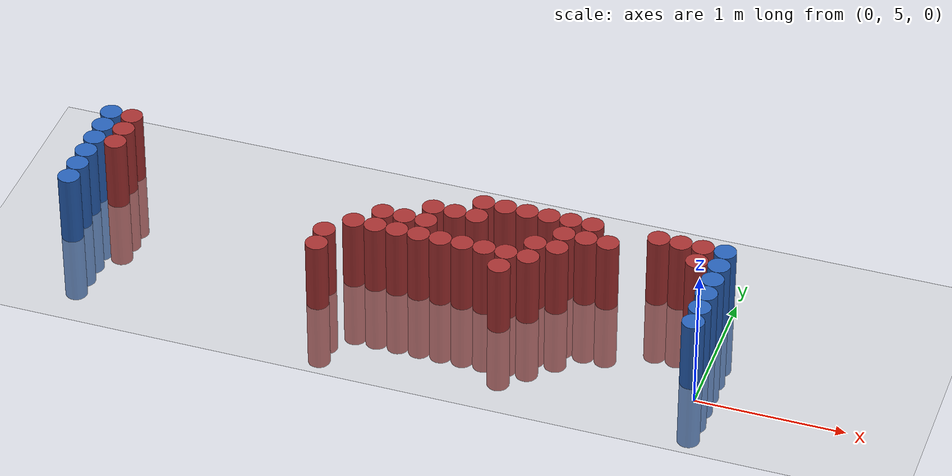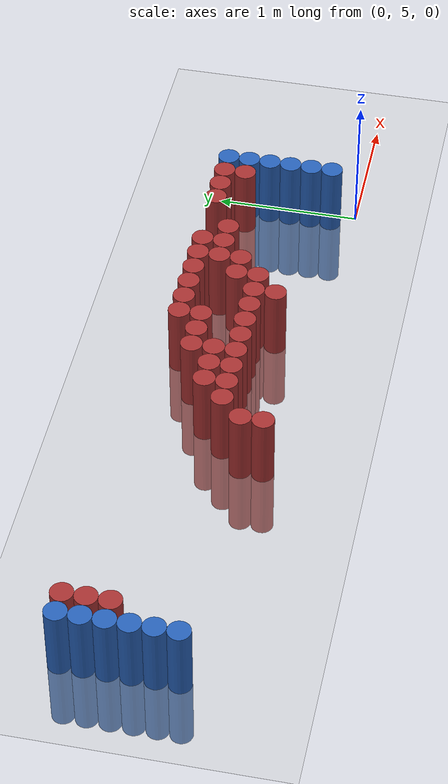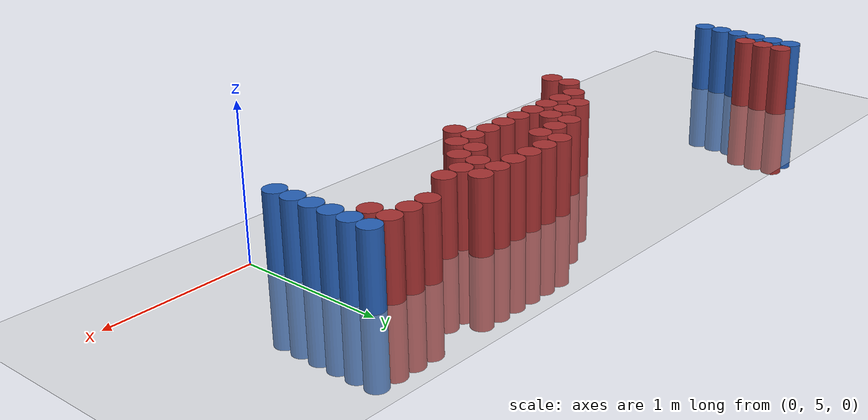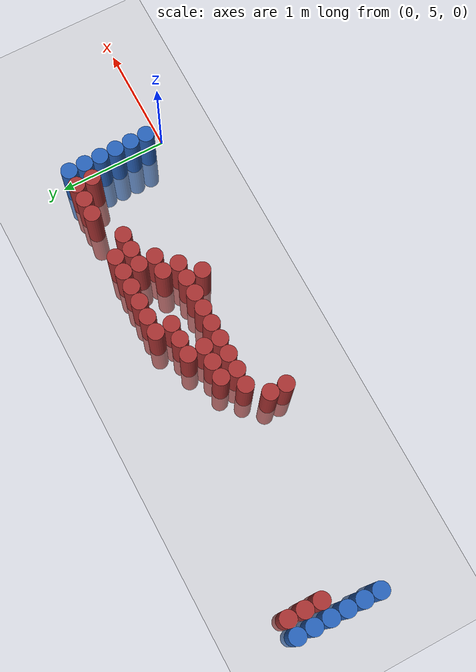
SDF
<sdf version="1.6">
 <world name="default">
  <model name="ground_plane">
   <static>1</static>
   <link name="link">
    <collision name="collision">
     <geometry><plane><normal>0 0 1</normal><size>100 100</size></plane></geometry>
     <surface><friction><ode><mu>100</mu><mu2>50</mu2></ode></friction></surface>
    </collision>
    <visual name="visual">
     <cast_shadows>0</cast_shadows>
     <geometry><plane><normal>0 0 1</normal><size>100 100</size></plane></geometry>
     <material>
      <script><uri>file://media/materials/scripts/gazebo.material</uri><name>Gazebo/Grey</name></script>
     </material>
    </visual>
   </link>
  </model>
  <model name="unit_cylinder_97">
   <static>1</static>
   <pose>-4.425000 5.325000 0.000000 0.000000 0.000000 0.000000</pose>
   <link name="link">
    <inertial>
     <mass>1</mass>
     <inertia><ixx>0.145833</ixx><ixy>0</ixy><ixz>0</ixz><iyy>0.145833</iyy><iyz>0</iyz><izz>0.125</izz></inertia>
    </inertial>
    <collision name="collision">
     <geometry><cylinder><radius>0.075000</radius><length>1</length></cylinder></geometry>
    </collision>
    <visual name="visual">
     <geometry><cylinder><radius>0.075000</radius><length>1</length></cylinder></geometry>
     <material>
      <ambient>0.152000 0.379000 0.720000 1</ambient>
      <diffuse>0.152000 0.379000 0.720000 1</diffuse>
     </material>
     <material>
      <script><name>Gazebo/Grey</name><uri>file://media/materials/scripts/gazebo.material</uri></script>
     </material>
    </visual>
   </link>
  </model>
  <model name="unit_cylinder_98">
   <static>1</static>
   <pose>-4.425000 5.475000 0.000000 0.000000 0.000000 0.000000</pose>
   <link name="link">
    <inertial>
     <mass>1</mass>
     <inertia><ixx>0.145833</ixx><ixy>0</ixy><ixz>0</ixz><iyy>0.145833</iyy><iyz>0</iyz><izz>0.125</izz></inertia>
    </inertial>
    <collision name="collision">
     <geometry><cylinder><radius>0.075000</radius><length>1</length></cylinder></geometry>
    </collision>
    <visual name="visual">
     <geometry><cylinder><radius>0.075000</radius><length>1</length></cylinder></geometry>
     <material>
      <ambient>0.152000 0.379000 0.720000 1</ambient>
      <diffuse>0.152000 0.379000 0.720000 1</diffuse>
     </material>
     <material>
      <script><name>Gazebo/Grey</name><uri>file://media/materials/scripts/gazebo.material</uri></script>
     </material>
    </visual>
   </link>
  </model>
  <model name="unit_cylinder_99">
   <static>1</static>
   <pose>-4.425000 5.625000 0.000000 0.000000 0.000000 0.000000</pose>
   <link name="link">
    <inertial>
     <mass>1</mass>
     <inertia><ixx>0.145833</ixx><ixy>0</ixy><ixz>0</ixz><iyy>0.145833</iyy><iyz>0</iyz><izz>0.125</izz></inertia>
    </inertial>
    <collision name="collision">
     <geometry><cylinder><radius>0.075000</radius><length>1</length></cylinder></geometry>
    </collision>
    <visual name="visual">
     <geometry><cylinder><radius>0.075000</radius><length>1</length></cylinder></geometry>
     <material>
      <ambient>0.152000 0.379000 0.720000 1</ambient>
      <diffuse>0.152000 0.379000 0.720000 1</diffuse>
     </material>
     <material>
      <script><name>Gazebo/Grey</name><uri>file://media/materials/scripts/gazebo.material</uri></script>
     </material>
    </visual>
   </link>
  </model>
  <model name="unit_cylinder_100">
   <static>1</static>
   <pose>-4.425000 5.775000 0.000000 0.000000 0.000000 0.000000</pose>
   <link name="link">
    <inertial>
     <mass>1</mass>
     <inertia><ixx>0.145833</ixx><ixy>0</ixy><ixz>0</ixz><iyy>0.145833</iyy><iyz>0</iyz><izz>0.125</izz></inertia>
    </inertial>
    <collision name="collision">
     <geometry><cylinder><radius>0.075000</radius><length>1</length></cylinder></geometry>
    </collision>
    <visual name="visual">
     <geometry><cylinder><radius>0.075000</radius><length>1</length></cylinder></geometry>
     <material>
      <ambient>0.152000 0.379000 0.720000 1</ambient>
      <diffuse>0.152000 0.379000 0.720000 1</diffuse>
     </material>
     <material>
      <script><name>Gazebo/Grey</name><uri>file://media/materials/scripts/gazebo.material</uri></script>
     </material>
    </visual>
   </link>
  </model>
  <model name="unit_cylinder_101">
   <static>1</static>
   <pose>-4.425000 5.925000 0.000000 0.000000 0.000000 0.000000</pose>
   <link name="link">
    <inertial>
     <mass>1</mass>
     <inertia><ixx>0.145833</ixx><ixy>0</ixy><ixz>0</ixz><iyy>0.145833</iyy><iyz>0</iyz><izz>0.125</izz></inertia>
    </inertial>
    <collision name="collision">
     <geometry><cylinder><radius>0.075000</radius><length>1</length></cylinder></geometry>
    </collision>
    <visual name="visual">
     <geometry><cylinder><radius>0.075000</radius><length>1</length></cylinder></geometry>
     <material>
      <ambient>0.152000 0.379000 0.720000 1</ambient>
      <diffuse>0.152000 0.379000 0.720000 1</diffuse>
     </material>
     <material>
      <script><name>Gazebo/Grey</name><uri>file://media/materials/scripts/gazebo.material</uri></script>
     </material>
    </visual>
   </link>
  </model>
  <model name="unit_cylinder_102">
   <static>1</static>
   <pose>-4.425000 6.075000 0.000000 0.000000 0.000000 0.000000</pose>
   <link name="link">
    <inertial>
     <mass>1</mass>
     <inertia><ixx>0.145833</ixx><ixy>0</ixy><ixz>0</ixz><iyy>0.145833</iyy><iyz>0</iyz><izz>0.125</izz></inertia>
    </inertial>
    <collision name="collision">
     <geometry><cylinder><radius>0.075000</radius><length>1</length></cylinder></geometry>
    </collision>
    <visual name="visual">
     <geometry><cylinder><radius>0.075000</radius><length>1</length></cylinder></geometry>
     <material>
      <ambient>0.152000 0.379000 0.720000 1</ambient>
      <diffuse>0.152000 0.379000 0.720000 1</diffuse>
     </material>
     <material>
      <script><name>Gazebo/Grey</name><uri>file://media/materials/scripts/gazebo.material</uri></script>
     </material>
    </visual>
   </link>
  </model>
  <model name="unit_cylinder_126">
   <static>1</static>
   <pose>-4.275000 5.775000 0.000000 0.000000 0.000000 0.000000</pose>
   <link name="link">
    <inertial>
     <mass>1</mass>
     <inertia><ixx>0.145833</ixx><ixy>0</ixy><ixz>0</ixz><iyy>0.145833</iyy><iyz>0</iyz><izz>0.125</izz></inertia>
    </inertial>
    <collision name="collision">
     <geometry><cylinder><radius>0.075000</radius><length>1</length></cylinder></geometry>
    </collision>
    <visual name="visual">
     <geometry><cylinder><radius>0.075000</radius><length>1</length></cylinder></geometry>
     <material>
      <ambient>0.648000 0.192000 0.192000 1</ambient>
      <diffuse>0.648000 0.192000 0.192000 1</diffuse>
     </material>
     <material>
      <script><name>Gazebo/Grey</name><uri>file://media/materials/scripts/gazebo.material</uri></script>
     </material>
    </visual>
   </link>
  </model>
  <model name="unit_cylinder_127">
   <static>1</static>
   <pose>-4.275000 5.925000 0.000000 0.000000 0.000000 0.000000</pose>
   <link name="link">
    <inertial>
     <mass>1</mass>
     <inertia><ixx>0.145833</ixx><ixy>0</ixy><ixz>0</ixz><iyy>0.145833</iyy><iyz>0</iyz><izz>0.125</izz></inertia>
    </inertial>
    <collision name="collision">
     <geometry><cylinder><radius>0.075000</radius><length>1</length></cylinder></geometry>
    </collision>
    <visual name="visual">
     <geometry><cylinder><radius>0.075000</radius><length>1</length></cylinder></geometry>
     <material>
      <ambient>0.648000 0.192000 0.192000 1</ambient>
      <diffuse>0.648000 0.192000 0.192000 1</diffuse>
     </material>
     <material>
      <script><name>Gazebo/Grey</name><uri>file://media/materials/scripts/gazebo.material</uri></script>
     </material>
    </visual>
   </link>
  </model>
  <model name="unit_cylinder_128">
   <static>1</static>
   <pose>-4.275000 6.075000 0.000000 0.000000 0.000000 0.000000</pose>
   <link name="link">
    <inertial>
     <mass>1</mass>
     <inertia><ixx>0.145833</ixx><ixy>0</ixy><ixz>0</ixz><iyy>0.145833</iyy><iyz>0</iyz><izz>0.125</izz></inertia>
    </inertial>
    <collision name="collision">
     <geometry><cylinder><radius>0.075000</radius><length>1</length></cylinder></geometry>
    </collision>
    <visual name="visual">
     <geometry><cylinder><radius>0.075000</radius><length>1</length></cylinder></geometry>
     <material>
      <ambient>0.648000 0.192000 0.192000 1</ambient>
      <diffuse>0.648000 0.192000 0.192000 1</diffuse>
     </material>
     <material>
      <script><name>Gazebo/Grey</name><uri>file://media/materials/scripts/gazebo.material</uri></script>
     </material>
    </visual>
   </link>
  </model>
  <model name="unit_cylinder_189">
   <static>1</static>
   <pose>-2.625000 5.175000 0.000000 0.000000 0.000000 0.000000</pose>
   <link name="link">
    <inertial>
     <mass>1</mass>
     <inertia><ixx>0.145833</ixx><ixy>0</ixy><ixz>0</ixz><iyy>0.145833</iyy><iyz>0</iyz><izz>0.125</izz></inertia>
    </inertial>
    <collision name="collision">
     <geometry><cylinder><radius>0.075000</radius><length>1</length></cylinder></geometry>
    </collision>
    <visual name="visual">
     <geometry><cylinder><radius>0.075000</radius><length>1</length></cylinder></geometry>
     <material>
      <ambient>0.648000 0.192000 0.192000 1</ambient>
      <diffuse>0.648000 0.192000 0.192000 1</diffuse>
     </material>
     <material>
      <script><name>Gazebo/Grey</name><uri>file://media/materials/scripts/gazebo.material</uri></script>
     </material>
    </visual>
   </link>
  </model>
  <model name="unit_cylinder_190">
   <static>1</static>
   <pose>-2.625000 5.325000 0.000000 0.000000 0.000000 0.000000</pose>
   <link name="link">
    <inertial>
     <mass>1</mass>
     <inertia><ixx>0.145833</ixx><ixy>0</ixy><ixz>0</ixz><iyy>0.145833</iyy><iyz>0</iyz><izz>0.125</izz></inertia>
    </inertial>
    <collision name="collision">
     <geometry><cylinder><radius>0.075000</radius><length>1</length></cylinder></geometry>
    </collision>
    <visual name="visual">
     <geometry><cylinder><radius>0.075000</radius><length>1</length></cylinder></geometry>
     <material>
      <ambient>0.648000 0.192000 0.192000 1</ambient>
      <diffuse>0.648000 0.192000 0.192000 1</diffuse>
     </material>
     <material>
      <script><name>Gazebo/Grey</name><uri>file://media/materials/scripts/gazebo.material</uri></script>
     </material>
    </visual>
   </link>
  </model>
  <model name="unit_cylinder_192">
   <static>1</static>
   <pose>-2.475000 5.475000 0.000000 0.000000 0.000000 0.000000</pose>
   <link name="link">
    <inertial>
     <mass>1</mass>
     <inertia><ixx>0.145833</ixx><ixy>0</ixy><ixz>0</ixz><iyy>0.145833</iyy><iyz>0</iyz><izz>0.125</izz></inertia>
    </inertial>
    <collision name="collision">
     <geometry><cylinder><radius>0.075000</radius><length>1</length></cylinder></geometry>
    </collision>
    <visual name="visual">
     <geometry><cylinder><radius>0.075000</radius><length>1</length></cylinder></geometry>
     <material>
      <ambient>0.648000 0.192000 0.192000 1</ambient>
      <diffuse>0.648000 0.192000 0.192000 1</diffuse>
     </material>
     <material>
      <script><name>Gazebo/Grey</name><uri>file://media/materials/scripts/gazebo.material</uri></script>
     </material>
    </visual>
   </link>
  </model>
  <model name="unit_cylinder_196">
   <static>1</static>
   <pose>-2.325000 5.475000 0.000000 0.000000 0.000000 0.000000</pose>
   <link name="link">
    <inertial>
     <mass>1</mass>
     <inertia><ixx>0.145833</ixx><ixy>0</ixy><ixz>0</ixz><iyy>0.145833</iyy><iyz>0</iyz><izz>0.125</izz></inertia>
    </inertial>
    <collision name="collision">
     <geometry><cylinder><radius>0.075000</radius><length>1</length></cylinder></geometry>
    </collision>
    <visual name="visual">
     <geometry><cylinder><radius>0.075000</radius><length>1</length></cylinder></geometry>
     <material>
      <ambient>0.648000 0.192000 0.192000 1</ambient>
      <diffuse>0.648000 0.192000 0.192000 1</diffuse>
     </material>
     <material>
      <script><name>Gazebo/Grey</name><uri>file://media/materials/scripts/gazebo.material</uri></script>
     </material>
    </visual>
   </link>
  </model>
  <model name="unit_cylinder_197">
   <static>1</static>
   <pose>-2.325000 5.625000 0.000000 0.000000 0.000000 0.000000</pose>
   <link name="link">
    <inertial>
     <mass>1</mass>
     <inertia><ixx>0.145833</ixx><ixy>0</ixy><ixz>0</ixz><iyy>0.145833</iyy><iyz>0</iyz><izz>0.125</izz></inertia>
    </inertial>
    <collision name="collision">
     <geometry><cylinder><radius>0.075000</radius><length>1</length></cylinder></geometry>
    </collision>
    <visual name="visual">
     <geometry><cylinder><radius>0.075000</radius><length>1</length></cylinder></geometry>
     <material>
      <ambient>0.648000 0.192000 0.192000 1</ambient>
      <diffuse>0.648000 0.192000 0.192000 1</diffuse>
     </material>
     <material>
      <script><name>Gazebo/Grey</name><uri>file://media/materials/scripts/gazebo.material</uri></script>
     </material>
    </visual>
   </link>
  </model>
  <model name="unit_cylinder_201">
   <static>1</static>
   <pose>-2.175000 5.475000 0.000000 0.000000 0.000000 0.000000</pose>
   <link name="link">
    <inertial>
     <mass>1</mass>
     <inertia><ixx>0.145833</ixx><ixy>0</ixy><ixz>0</ixz><iyy>0.145833</iyy><iyz>0</iyz><izz>0.125</izz></inertia>
    </inertial>
    <collision name="collision">
     <geometry><cylinder><radius>0.075000</radius><length>1</length></cylinder></geometry>
    </collision>
    <visual name="visual">
     <geometry><cylinder><radius>0.075000</radius><length>1</length></cylinder></geometry>
     <material>
      <ambient>0.648000 0.192000 0.192000 1</ambient>
      <diffuse>0.648000 0.192000 0.192000 1</diffuse>
     </material>
     <material>
      <script><name>Gazebo/Grey</name><uri>file://media/materials/scripts/gazebo.material</uri></script>
     </material>
    </visual>
   </link>
  </model>
  <model name="unit_cylinder_202">
   <static>1</static>
   <pose>-2.175000 5.625000 0.000000 0.000000 0.000000 0.000000</pose>
   <link name="link">
    <inertial>
     <mass>1</mass>
     <inertia><ixx>0.145833</ixx><ixy>0</ixy><ixz>0</ixz><iyy>0.145833</iyy><iyz>0</iyz><izz>0.125</izz></inertia>
    </inertial>
    <collision name="collision">
     <geometry><cylinder><radius>0.075000</radius><length>1</length></cylinder></geometry>
    </collision>
    <visual name="visual">
     <geometry><cylinder><radius>0.075000</radius><length>1</length></cylinder></geometry>
     <material>
      <ambient>0.648000 0.192000 0.192000 1</ambient>
      <diffuse>0.648000 0.192000 0.192000 1</diffuse>
     </material>
     <material>
      <script><name>Gazebo/Grey</name><uri>file://media/materials/scripts/gazebo.material</uri></script>
     </material>
    </visual>
   </link>
  </model>
  <model name="unit_cylinder_204">
   <static>1</static>
   <pose>-2.025000 5.475000 0.000000 0.000000 0.000000 0.000000</pose>
   <link name="link">
    <inertial>
     <mass>1</mass>
     <inertia><ixx>0.145833</ixx><ixy>0</ixy><ixz>0</ixz><iyy>0.145833</iyy><iyz>0</iyz><izz>0.125</izz></inertia>
    </inertial>
    <collision name="collision">
     <geometry><cylinder><radius>0.075000</radius><length>1</length></cylinder></geometry>
    </collision>
    <visual name="visual">
     <geometry><cylinder><radius>0.075000</radius><length>1</length></cylinder></geometry>
     <material>
      <ambient>0.648000 0.192000 0.192000 1</ambient>
      <diffuse>0.648000 0.192000 0.192000 1</diffuse>
     </material>
     <material>
      <script><name>Gazebo/Grey</name><uri>file://media/materials/scripts/gazebo.material</uri></script>
     </material>
    </visual>
   </link>
  </model>
  <model name="unit_cylinder_205">
   <static>1</static>
   <pose>-2.025000 5.625000 0.000000 0.000000 0.000000 0.000000</pose>
   <link name="link">
    <inertial>
     <mass>1</mass>
     <inertia><ixx>0.145833</ixx><ixy>0</ixy><ixz>0</ixz><iyy>0.145833</iyy><iyz>0</iyz><izz>0.125</izz></inertia>
    </inertial>
    <collision name="collision">
     <geometry><cylinder><radius>0.075000</radius><length>1</length></cylinder></geometry>
    </collision>
    <visual name="visual">
     <geometry><cylinder><radius>0.075000</radius><length>1</length></cylinder></geometry>
     <material>
      <ambient>0.648000 0.192000 0.192000 1</ambient>
      <diffuse>0.648000 0.192000 0.192000 1</diffuse>
     </material>
     <material>
      <script><name>Gazebo/Grey</name><uri>file://media/materials/scripts/gazebo.material</uri></script>
     </material>
    </visual>
   </link>
  </model>
  <model name="unit_cylinder_206">
   <static>1</static>
   <pose>-2.025000 5.775000 0.000000 0.000000 0.000000 0.000000</pose>
   <link name="link">
    <inertial>
     <mass>1</mass>
     <inertia><ixx>0.145833</ixx><ixy>0</ixy><ixz>0</ixz><iyy>0.145833</iyy><iyz>0</iyz><izz>0.125</izz></inertia>
    </inertial>
    <collision name="collision">
     <geometry><cylinder><radius>0.075000</radius><length>1</length></cylinder></geometry>
    </collision>
    <visual name="visual">
     <geometry><cylinder><radius>0.075000</radius><length>1</length></cylinder></geometry>
     <material>
      <ambient>0.648000 0.192000 0.192000 1</ambient>
      <diffuse>0.648000 0.192000 0.192000 1</diffuse>
     </material>
     <material>
      <script><name>Gazebo/Grey</name><uri>file://media/materials/scripts/gazebo.material</uri></script>
     </material>
    </visual>
   </link>
  </model>
  <model name="unit_cylinder_207">
   <static>1</static>
   <pose>-1.875000 5.475000 0.000000 0.000000 0.000000 0.000000</pose>
   <link name="link">
    <inertial>
     <mass>1</mass>
     <inertia><ixx>0.145833</ixx><ixy>0</ixy><ixz>0</ixz><iyy>0.145833</iyy><iyz>0</iyz><izz>0.125</izz></inertia>
    </inertial>
    <collision name="collision">
     <geometry><cylinder><radius>0.075000</radius><length>1</length></cylinder></geometry>
    </collision>
    <visual name="visual">
     <geometry><cylinder><radius>0.075000</radius><length>1</length></cylinder></geometry>
     <material>
      <ambient>0.648000 0.192000 0.192000 1</ambient>
      <diffuse>0.648000 0.192000 0.192000 1</diffuse>
     </material>
     <material>
      <script><name>Gazebo/Grey</name><uri>file://media/materials/scripts/gazebo.material</uri></script>
     </material>
    </visual>
   </link>
  </model>
  <model name="unit_cylinder_208">
   <static>1</static>
   <pose>-1.875000 5.775000 0.000000 0.000000 0.000000 0.000000</pose>
   <link name="link">
    <inertial>
     <mass>1</mass>
     <inertia><ixx>0.145833</ixx><ixy>0</ixy><ixz>0</ixz><iyy>0.145833</iyy><iyz>0</iyz><izz>0.125</izz></inertia>
    </inertial>
    <collision name="collision">
     <geometry><cylinder><radius>0.075000</radius><length>1</length></cylinder></geometry>
    </collision>
    <visual name="visual">
     <geometry><cylinder><radius>0.075000</radius><length>1</length></cylinder></geometry>
     <material>
      <ambient>0.648000 0.192000 0.192000 1</ambient>
      <diffuse>0.648000 0.192000 0.192000 1</diffuse>
     </material>
     <material>
      <script><name>Gazebo/Grey</name><uri>file://media/materials/scripts/gazebo.material</uri></script>
     </material>
    </visual>
   </link>
  </model>
  <model name="unit_cylinder_211">
   <static>1</static>
   <pose>-1.725000 5.475000 0.000000 0.000000 0.000000 0.000000</pose>
   <link name="link">
    <inertial>
     <mass>1</mass>
     <inertia><ixx>0.145833</ixx><ixy>0</ixy><ixz>0</ixz><iyy>0.145833</iyy><iyz>0</iyz><izz>0.125</izz></inertia>
    </inertial>
    <collision name="collision">
     <geometry><cylinder><radius>0.075000</radius><length>1</length></cylinder></geometry>
    </collision>
    <visual name="visual">
     <geometry><cylinder><radius>0.075000</radius><length>1</length></cylinder></geometry>
     <material>
      <ambient>0.648000 0.192000 0.192000 1</ambient>
      <diffuse>0.648000 0.192000 0.192000 1</diffuse>
     </material>
     <material>
      <script><name>Gazebo/Grey</name><uri>file://media/materials/scripts/gazebo.material</uri></script>
     </material>
    </visual>
   </link>
  </model>
  <model name="unit_cylinder_212">
   <static>1</static>
   <pose>-1.725000 5.775000 0.000000 0.000000 0.000000 0.000000</pose>
   <link name="link">
    <inertial>
     <mass>1</mass>
     <inertia><ixx>0.145833</ixx><ixy>0</ixy><ixz>0</ixz><iyy>0.145833</iyy><iyz>0</iyz><izz>0.125</izz></inertia>
    </inertial>
    <collision name="collision">
     <geometry><cylinder><radius>0.075000</radius><length>1</length></cylinder></geometry>
    </collision>
    <visual name="visual">
     <geometry><cylinder><radius>0.075000</radius><length>1</length></cylinder></geometry>
     <material>
      <ambient>0.648000 0.192000 0.192000 1</ambient>
      <diffuse>0.648000 0.192000 0.192000 1</diffuse>
     </material>
     <material>
      <script><name>Gazebo/Grey</name><uri>file://media/materials/scripts/gazebo.material</uri></script>
     </material>
    </visual>
   </link>
  </model>
  <model name="unit_cylinder_213">
   <static>1</static>
   <pose>-1.725000 5.925000 0.000000 0.000000 0.000000 0.000000</pose>
   <link name="link">
    <inertial>
     <mass>1</mass>
     <inertia><ixx>0.145833</ixx><ixy>0</ixy><ixz>0</ixz><iyy>0.145833</iyy><iyz>0</iyz><izz>0.125</izz></inertia>
    </inertial>
    <collision name="collision">
     <geometry><cylinder><radius>0.075000</radius><length>1</length></cylinder></geometry>
    </collision>
    <visual name="visual">
     <geometry><cylinder><radius>0.075000</radius><length>1</length></cylinder></geometry>
     <material>
      <ambient>0.648000 0.192000 0.192000 1</ambient>
      <diffuse>0.648000 0.192000 0.192000 1</diffuse>
     </material>
     <material>
      <script><name>Gazebo/Grey</name><uri>file://media/materials/scripts/gazebo.material</uri></script>
     </material>
    </visual>
   </link>
  </model>
  <model name="unit_cylinder_216">
   <static>1</static>
   <pose>-1.575000 5.475000 0.000000 0.000000 0.000000 0.000000</pose>
   <link name="link">
    <inertial>
     <mass>1</mass>
     <inertia><ixx>0.145833</ixx><ixy>0</ixy><ixz>0</ixz><iyy>0.145833</iyy><iyz>0</iyz><izz>0.125</izz></inertia>
    </inertial>
    <collision name="collision">
     <geometry><cylinder><radius>0.075000</radius><length>1</length></cylinder></geometry>
    </collision>
    <visual name="visual">
     <geometry><cylinder><radius>0.075000</radius><length>1</length></cylinder></geometry>
     <material>
      <ambient>0.648000 0.192000 0.192000 1</ambient>
      <diffuse>0.648000 0.192000 0.192000 1</diffuse>
     </material>
     <material>
      <script><name>Gazebo/Grey</name><uri>file://media/materials/scripts/gazebo.material</uri></script>
     </material>
    </visual>
   </link>
  </model>
  <model name="unit_cylinder_217">
   <static>1</static>
   <pose>-1.575000 5.925000 0.000000 0.000000 0.000000 0.000000</pose>
   <link name="link">
    <inertial>
     <mass>1</mass>
     <inertia><ixx>0.145833</ixx><ixy>0</ixy><ixz>0</ixz><iyy>0.145833</iyy><iyz>0</iyz><izz>0.125</izz></inertia>
    </inertial>
    <collision name="collision">
     <geometry><cylinder><radius>0.075000</radius><length>1</length></cylinder></geometry>
    </collision>
    <visual name="visual">
     <geometry><cylinder><radius>0.075000</radius><length>1</length></cylinder></geometry>
     <material>
      <ambient>0.648000 0.192000 0.192000 1</ambient>
      <diffuse>0.648000 0.192000 0.192000 1</diffuse>
     </material>
     <material>
      <script><name>Gazebo/Grey</name><uri>file://media/materials/scripts/gazebo.material</uri></script>
     </material>
    </visual>
   </link>
  </model>
  <model name="unit_cylinder_223">
   <static>1</static>
   <pose>-1.425000 5.325000 0.000000 0.000000 0.000000 0.000000</pose>
   <link name="link">
    <inertial>
     <mass>1</mass>
     <inertia><ixx>0.145833</ixx><ixy>0</ixy><ixz>0</ixz><iyy>0.145833</iyy><iyz>0</iyz><izz>0.125</izz></inertia>
    </inertial>
    <collision name="collision">
     <geometry><cylinder><radius>0.075000</radius><length>1</length></cylinder></geometry>
    </collision>
    <visual name="visual">
     <geometry><cylinder><radius>0.075000</radius><length>1</length></cylinder></geometry>
     <material>
      <ambient>0.648000 0.192000 0.192000 1</ambient>
      <diffuse>0.648000 0.192000 0.192000 1</diffuse>
     </material>
     <material>
      <script><name>Gazebo/Grey</name><uri>file://media/materials/scripts/gazebo.material</uri></script>
     </material>
    </visual>
   </link>
  </model>
  <model name="unit_cylinder_224">
   <static>1</static>
   <pose>-1.425000 5.475000 0.000000 0.000000 0.000000 0.000000</pose>
   <link name="link">
    <inertial>
     <mass>1</mass>
     <inertia><ixx>0.145833</ixx><ixy>0</ixy><ixz>0</ixz><iyy>0.145833</iyy><iyz>0</iyz><izz>0.125</izz></inertia>
    </inertial>
    <collision name="collision">
     <geometry><cylinder><radius>0.075000</radius><length>1</length></cylinder></geometry>
    </collision>
    <visual name="visual">
     <geometry><cylinder><radius>0.075000</radius><length>1</length></cylinder></geometry>
     <material>
      <ambient>0.648000 0.192000 0.192000 1</ambient>
      <diffuse>0.648000 0.192000 0.192000 1</diffuse>
     </material>
     <material>
      <script><name>Gazebo/Grey</name><uri>file://media/materials/scripts/gazebo.material</uri></script>
     </material>
    </visual>
   </link>
  </model>
  <model name="unit_cylinder_225">
   <static>1</static>
   <pose>-1.425000 5.925000 0.000000 0.000000 0.000000 0.000000</pose>
   <link name="link">
    <inertial>
     <mass>1</mass>
     <inertia><ixx>0.145833</ixx><ixy>0</ixy><ixz>0</ixz><iyy>0.145833</iyy><iyz>0</iyz><izz>0.125</izz></inertia>
    </inertial>
    <collision name="collision">
     <geometry><cylinder><radius>0.075000</radius><length>1</length></cylinder></geometry>
    </collision>
    <visual name="visual">
     <geometry><cylinder><radius>0.075000</radius><length>1</length></cylinder></geometry>
     <material>
      <ambient>0.648000 0.192000 0.192000 1</ambient>
      <diffuse>0.648000 0.192000 0.192000 1</diffuse>
     </material>
     <material>
      <script><name>Gazebo/Grey</name><uri>file://media/materials/scripts/gazebo.material</uri></script>
     </material>
    </visual>
   </link>
  </model>
  <model name="unit_cylinder_233">
   <static>1</static>
   <pose>-1.275000 5.475000 0.000000 0.000000 0.000000 0.000000</pose>
   <link name="link">
    <inertial>
     <mass>1</mass>
     <inertia><ixx>0.145833</ixx><ixy>0</ixy><ixz>0</ixz><iyy>0.145833</iyy><iyz>0</iyz><izz>0.125</izz></inertia>
    </inertial>
    <collision name="collision">
     <geometry><cylinder><radius>0.075000</radius><length>1</length></cylinder></geometry>
    </collision>
    <visual name="visual">
     <geometry><cylinder><radius>0.075000</radius><length>1</length></cylinder></geometry>
     <material>
      <ambient>0.648000 0.192000 0.192000 1</ambient>
      <diffuse>0.648000 0.192000 0.192000 1</diffuse>
     </material>
     <material>
      <script><name>Gazebo/Grey</name><uri>file://media/materials/scripts/gazebo.material</uri></script>
     </material>
    </visual>
   </link>
  </model>
  <model name="unit_cylinder_234">
   <static>1</static>
   <pose>-1.275000 5.625000 0.000000 0.000000 0.000000 0.000000</pose>
   <link name="link">
    <inertial>
     <mass>1</mass>
     <inertia><ixx>0.145833</ixx><ixy>0</ixy><ixz>0</ixz><iyy>0.145833</iyy><iyz>0</iyz><izz>0.125</izz></inertia>
    </inertial>
    <collision name="collision">
     <geometry><cylinder><radius>0.075000</radius><length>1</length></cylinder></geometry>
    </collision>
    <visual name="visual">
     <geometry><cylinder><radius>0.075000</radius><length>1</length></cylinder></geometry>
     <material>
      <ambient>0.648000 0.192000 0.192000 1</ambient>
      <diffuse>0.648000 0.192000 0.192000 1</diffuse>
     </material>
     <material>
      <script><name>Gazebo/Grey</name><uri>file://media/materials/scripts/gazebo.material</uri></script>
     </material>
    </visual>
   </link>
  </model>
  <model name="unit_cylinder_235">
   <static>1</static>
   <pose>-1.275000 5.925000 0.000000 0.000000 0.000000 0.000000</pose>
   <link name="link">
    <inertial>
     <mass>1</mass>
     <inertia><ixx>0.145833</ixx><ixy>0</ixy><ixz>0</ixz><iyy>0.145833</iyy><iyz>0</iyz><izz>0.125</izz></inertia>
    </inertial>
    <collision name="collision">
     <geometry><cylinder><radius>0.075000</radius><length>1</length></cylinder></geometry>
    </collision>
    <visual name="visual">
     <geometry><cylinder><radius>0.075000</radius><length>1</length></cylinder></geometry>
     <material>
      <ambient>0.648000 0.192000 0.192000 1</ambient>
      <diffuse>0.648000 0.192000 0.192000 1</diffuse>
     </material>
     <material>
      <script><name>Gazebo/Grey</name><uri>file://media/materials/scripts/gazebo.material</uri></script>
     </material>
    </visual>
   </link>
  </model>
  <model name="unit_cylinder_244">
   <static>1</static>
   <pose>-1.125000 5.625000 0.000000 0.000000 0.000000 0.000000</pose>
   <link name="link">
    <inertial>
     <mass>1</mass>
     <inertia><ixx>0.145833</ixx><ixy>0</ixy><ixz>0</ixz><iyy>0.145833</iyy><iyz>0</iyz><izz>0.125</izz></inertia>
    </inertial>
    <collision name="collision">
     <geometry><cylinder><radius>0.075000</radius><length>1</length></cylinder></geometry>
    </collision>
    <visual name="visual">
     <geometry><cylinder><radius>0.075000</radius><length>1</length></cylinder></geometry>
     <material>
      <ambient>0.648000 0.192000 0.192000 1</ambient>
      <diffuse>0.648000 0.192000 0.192000 1</diffuse>
     </material>
     <material>
      <script><name>Gazebo/Grey</name><uri>file://media/materials/scripts/gazebo.material</uri></script>
     </material>
    </visual>
   </link>
  </model>
  <model name="unit_cylinder_245">
   <static>1</static>
   <pose>-1.125000 5.775000 0.000000 0.000000 0.000000 0.000000</pose>
   <link name="link">
    <inertial>
     <mass>1</mass>
     <inertia><ixx>0.145833</ixx><ixy>0</ixy><ixz>0</ixz><iyy>0.145833</iyy><iyz>0</iyz><izz>0.125</izz></inertia>
    </inertial>
    <collision name="collision">
     <geometry><cylinder><radius>0.075000</radius><length>1</length></cylinder></geometry>
    </collision>
    <visual name="visual">
     <geometry><cylinder><radius>0.075000</radius><length>1</length></cylinder></geometry>
     <material>
      <ambient>0.648000 0.192000 0.192000 1</ambient>
      <diffuse>0.648000 0.192000 0.192000 1</diffuse>
     </material>
     <material>
      <script><name>Gazebo/Grey</name><uri>file://media/materials/scripts/gazebo.material</uri></script>
     </material>
    </visual>
   </link>
  </model>
  <model name="unit_cylinder_246">
   <static>1</static>
   <pose>-1.125000 5.925000 0.000000 0.000000 0.000000 0.000000</pose>
   <link name="link">
    <inertial>
     <mass>1</mass>
     <inertia><ixx>0.145833</ixx><ixy>0</ixy><ixz>0</ixz><iyy>0.145833</iyy><iyz>0</iyz><izz>0.125</izz></inertia>
    </inertial>
    <collision name="collision">
     <geometry><cylinder><radius>0.075000</radius><length>1</length></cylinder></geometry>
    </collision>
    <visual name="visual">
     <geometry><cylinder><radius>0.075000</radius><length>1</length></cylinder></geometry>
     <material>
      <ambient>0.648000 0.192000 0.192000 1</ambient>
      <diffuse>0.648000 0.192000 0.192000 1</diffuse>
     </material>
     <material>
      <script><name>Gazebo/Grey</name><uri>file://media/materials/scripts/gazebo.material</uri></script>
     </material>
    </visual>
   </link>
  </model>
  <model name="unit_cylinder_256">
   <static>1</static>
   <pose>-0.975000 5.775000 0.000000 0.000000 0.000000 0.000000</pose>
   <link name="link">
    <inertial>
     <mass>1</mass>
     <inertia><ixx>0.145833</ixx><ixy>0</ixy><ixz>0</ixz><iyy>0.145833</iyy><iyz>0</iyz><izz>0.125</izz></inertia>
    </inertial>
    <collision name="collision">
     <geometry><cylinder><radius>0.075000</radius><length>1</length></cylinder></geometry>
    </collision>
    <visual name="visual">
     <geometry><cylinder><radius>0.075000</radius><length>1</length></cylinder></geometry>
     <material>
      <ambient>0.648000 0.192000 0.192000 1</ambient>
      <diffuse>0.648000 0.192000 0.192000 1</diffuse>
     </material>
     <material>
      <script><name>Gazebo/Grey</name><uri>file://media/materials/scripts/gazebo.material</uri></script>
     </material>
    </visual>
   </link>
  </model>
  <model name="unit_cylinder_257">
   <static>1</static>
   <pose>-0.975000 5.925000 0.000000 0.000000 0.000000 0.000000</pose>
   <link name="link">
    <inertial>
     <mass>1</mass>
     <inertia><ixx>0.145833</ixx><ixy>0</ixy><ixz>0</ixz><iyy>0.145833</iyy><iyz>0</iyz><izz>0.125</izz></inertia>
    </inertial>
    <collision name="collision">
     <geometry><cylinder><radius>0.075000</radius><length>1</length></cylinder></geometry>
    </collision>
    <visual name="visual">
     <geometry><cylinder><radius>0.075000</radius><length>1</length></cylinder></geometry>
     <material>
      <ambient>0.648000 0.192000 0.192000 1</ambient>
      <diffuse>0.648000 0.192000 0.192000 1</diffuse>
     </material>
     <material>
      <script><name>Gazebo/Grey</name><uri>file://media/materials/scripts/gazebo.material</uri></script>
     </material>
    </visual>
   </link>
  </model>
  <model name="unit_cylinder_266">
   <static>1</static>
   <pose>-0.825000 5.775000 0.000000 0.000000 0.000000 0.000000</pose>
   <link name="link">
    <inertial>
     <mass>1</mass>
     <inertia><ixx>0.145833</ixx><ixy>0</ixy><ixz>0</ixz><iyy>0.145833</iyy><iyz>0</iyz><izz>0.125</izz></inertia>
    </inertial>
    <collision name="collision">
     <geometry><cylinder><radius>0.075000</radius><length>1</length></cylinder></geometry>
    </collision>
    <visual name="visual">
     <geometry><cylinder><radius>0.075000</radius><length>1</length></cylinder></geometry>
     <material>
      <ambient>0.648000 0.192000 0.192000 1</ambient>
      <diffuse>0.648000 0.192000 0.192000 1</diffuse>
     </material>
     <material>
      <script><name>Gazebo/Grey</name><uri>file://media/materials/scripts/gazebo.material</uri></script>
     </material>
    </visual>
   </link>
  </model>
  <model name="unit_cylinder_281">
   <static>1</static>
   <pose>-0.525000 5.925000 0.000000 0.000000 0.000000 0.000000</pose>
   <link name="link">
    <inertial>
     <mass>1</mass>
     <inertia><ixx>0.145833</ixx><ixy>0</ixy><ixz>0</ixz><iyy>0.145833</iyy><iyz>0</iyz><izz>0.125</izz></inertia>
    </inertial>
    <collision name="collision">
     <geometry><cylinder><radius>0.075000</radius><length>1</length></cylinder></geometry>
    </collision>
    <visual name="visual">
     <geometry><cylinder><radius>0.075000</radius><length>1</length></cylinder></geometry>
     <material>
      <ambient>0.648000 0.192000 0.192000 1</ambient>
      <diffuse>0.648000 0.192000 0.192000 1</diffuse>
     </material>
     <material>
      <script><name>Gazebo/Grey</name><uri>file://media/materials/scripts/gazebo.material</uri></script>
     </material>
    </visual>
   </link>
  </model>
  <model name="unit_cylinder_289">
   <static>1</static>
   <pose>-0.375000 5.925000 0.000000 0.000000 0.000000 0.000000</pose>
   <link name="link">
    <inertial>
     <mass>1</mass>
     <inertia><ixx>0.145833</ixx><ixy>0</ixy><ixz>0</ixz><iyy>0.145833</iyy><iyz>0</iyz><izz>0.125</izz></inertia>
    </inertial>
    <collision name="collision">
     <geometry><cylinder><radius>0.075000</radius><length>1</length></cylinder></geometry>
    </collision>
    <visual name="visual">
     <geometry><cylinder><radius>0.075000</radius><length>1</length></cylinder></geometry>
     <material>
      <ambient>0.648000 0.192000 0.192000 1</ambient>
      <diffuse>0.648000 0.192000 0.192000 1</diffuse>
     </material>
     <material>
      <script><name>Gazebo/Grey</name><uri>file://media/materials/scripts/gazebo.material</uri></script>
     </material>
    </visual>
   </link>
  </model>
  <model name="unit_cylinder_296">
   <static>1</static>
   <pose>-0.225000 5.775000 0.000000 0.000000 0.000000 0.000000</pose>
   <link name="link">
    <inertial>
     <mass>1</mass>
     <inertia><ixx>0.145833</ixx><ixy>0</ixy><ixz>0</ixz><iyy>0.145833</iyy><iyz>0</iyz><izz>0.125</izz></inertia>
    </inertial>
    <collision name="collision">
     <geometry><cylinder><radius>0.075000</radius><length>1</length></cylinder></geometry>
    </collision>
    <visual name="visual">
     <geometry><cylinder><radius>0.075000</radius><length>1</length></cylinder></geometry>
     <material>
      <ambient>0.648000 0.192000 0.192000 1</ambient>
      <diffuse>0.648000 0.192000 0.192000 1</diffuse>
     </material>
     <material>
      <script><name>Gazebo/Grey</name><uri>file://media/materials/scripts/gazebo.material</uri></script>
     </material>
    </visual>
   </link>
  </model>
  <model name="unit_cylinder_297">
   <static>1</static>
   <pose>-0.225000 5.925000 0.000000 0.000000 0.000000 0.000000</pose>
   <link name="link">
    <inertial>
     <mass>1</mass>
     <inertia><ixx>0.145833</ixx><ixy>0</ixy><ixz>0</ixz><iyy>0.145833</iyy><iyz>0</iyz><izz>0.125</izz></inertia>
    </inertial>
    <collision name="collision">
     <geometry><cylinder><radius>0.075000</radius><length>1</length></cylinder></geometry>
    </collision>
    <visual name="visual">
     <geometry><cylinder><radius>0.075000</radius><length>1</length></cylinder></geometry>
     <material>
      <ambient>0.648000 0.192000 0.192000 1</ambient>
      <diffuse>0.648000 0.192000 0.192000 1</diffuse>
     </material>
     <material>
      <script><name>Gazebo/Grey</name><uri>file://media/materials/scripts/gazebo.material</uri></script>
     </material>
    </visual>
   </link>
  </model>
  <model name="unit_cylinder_310">
   <static>1</static>
   <pose>-0.075000 5.175000 0.000000 0.000000 0.000000 0.000000</pose>
   <link name="link">
    <inertial>
     <mass>1</mass>
     <inertia><ixx>0.145833</ixx><ixy>0</ixy><ixz>0</ixz><iyy>0.145833</iyy><iyz>0</iyz><izz>0.125</izz></inertia>
    </inertial>
    <collision name="collision">
     <geometry><cylinder><radius>0.075000</radius><length>1</length></cylinder></geometry>
    </collision>
    <visual name="visual">
     <geometry><cylinder><radius>0.075000</radius><length>1</length></cylinder></geometry>
     <material>
      <ambient>0.152000 0.379000 0.720000 1</ambient>
      <diffuse>0.152000 0.379000 0.720000 1</diffuse>
     </material>
     <material>
      <script><name>Gazebo/Grey</name><uri>file://media/materials/scripts/gazebo.material</uri></script>
     </material>
    </visual>
   </link>
  </model>
  <model name="unit_cylinder_311">
   <static>1</static>
   <pose>-0.075000 5.325000 0.000000 0.000000 0.000000 0.000000</pose>
   <link name="link">
    <inertial>
     <mass>1</mass>
     <inertia><ixx>0.145833</ixx><ixy>0</ixy><ixz>0</ixz><iyy>0.145833</iyy><iyz>0</iyz><izz>0.125</izz></inertia>
    </inertial>
    <collision name="collision">
     <geometry><cylinder><radius>0.075000</radius><length>1</length></cylinder></geometry>
    </collision>
    <visual name="visual">
     <geometry><cylinder><radius>0.075000</radius><length>1</length></cylinder></geometry>
     <material>
      <ambient>0.152000 0.379000 0.720000 1</ambient>
      <diffuse>0.152000 0.379000 0.720000 1</diffuse>
     </material>
     <material>
      <script><name>Gazebo/Grey</name><uri>file://media/materials/scripts/gazebo.material</uri></script>
     </material>
    </visual>
   </link>
  </model>
  <model name="unit_cylinder_312">
   <static>1</static>
   <pose>-0.075000 5.475000 0.000000 0.000000 0.000000 0.000000</pose>
   <link name="link">
    <inertial>
     <mass>1</mass>
     <inertia><ixx>0.145833</ixx><ixy>0</ixy><ixz>0</ixz><iyy>0.145833</iyy><iyz>0</iyz><izz>0.125</izz></inertia>
    </inertial>
    <collision name="collision">
     <geometry><cylinder><radius>0.075000</radius><length>1</length></cylinder></geometry>
    </collision>
    <visual name="visual">
     <geometry><cylinder><radius>0.075000</radius><length>1</length></cylinder></geometry>
     <material>
      <ambient>0.152000 0.379000 0.720000 1</ambient>
      <diffuse>0.152000 0.379000 0.720000 1</diffuse>
     </material>
     <material>
      <script><name>Gazebo/Grey</name><uri>file://media/materials/scripts/gazebo.material</uri></script>
     </material>
    </visual>
   </link>
  </model>
  <model name="unit_cylinder_313">
   <static>1</static>
   <pose>-0.075000 5.625000 0.000000 0.000000 0.000000 0.000000</pose>
   <link name="link">
    <inertial>
     <mass>1</mass>
     <inertia><ixx>0.145833</ixx><ixy>0</ixy><ixz>0</ixz><iyy>0.145833</iyy><iyz>0</iyz><izz>0.125</izz></inertia>
    </inertial>
    <collision name="collision">
     <geometry><cylinder><radius>0.075000</radius><length>1</length></cylinder></geometry>
    </collision>
    <visual name="visual">
     <geometry><cylinder><radius>0.075000</radius><length>1</length></cylinder></geometry>
     <material>
      <ambient>0.152000 0.379000 0.720000 1</ambient>
      <diffuse>0.152000 0.379000 0.720000 1</diffuse>
     </material>
     <material>
      <script><name>Gazebo/Grey</name><uri>file://media/materials/scripts/gazebo.material</uri></script>
     </material>
    </visual>
   </link>
  </model>
  <model name="unit_cylinder_314">
   <static>1</static>
   <pose>-0.075000 5.775000 0.000000 0.000000 0.000000 0.000000</pose>
   <link name="link">
    <inertial>
     <mass>1</mass>
     <inertia><ixx>0.145833</ixx><ixy>0</ixy><ixz>0</ixz><iyy>0.145833</iyy><iyz>0</iyz><izz>0.125</izz></inertia>
    </inertial>
    <collision name="collision">
     <geometry><cylinder><radius>0.075000</radius><length>1</length></cylinder></geometry>
    </collision>
    <visual name="visual">
     <geometry><cylinder><radius>0.075000</radius><length>1</length></cylinder></geometry>
     <material>
      <ambient>0.152000 0.379000 0.720000 1</ambient>
      <diffuse>0.152000 0.379000 0.720000 1</diffuse>
     </material>
     <material>
      <script><name>Gazebo/Grey</name><uri>file://media/materials/scripts/gazebo.material</uri></script>
     </material>
    </visual>
   </link>
  </model>
  <model name="unit_cylinder_315">
   <static>1</static>
   <pose>-0.075000 5.925000 0.000000 0.000000 0.000000 0.000000</pose>
   <link name="link">
    <inertial>
     <mass>1</mass>
     <inertia><ixx>0.145833</ixx><ixy>0</ixy><ixz>0</ixz><iyy>0.145833</iyy><iyz>0</iyz><izz>0.125</izz></inertia>
    </inertial>
    <collision name="collision">
     <geometry><cylinder><radius>0.075000</radius><length>1</length></cylinder></geometry>
    </collision>
    <visual name="visual">
     <geometry><cylinder><radius>0.075000</radius><length>1</length></cylinder></geometry>
     <material>
      <ambient>0.152000 0.379000 0.720000 1</ambient>
      <diffuse>0.152000 0.379000 0.720000 1</diffuse>
     </material>
     <material>
      <script><name>Gazebo/Grey</name><uri>file://media/materials/scripts/gazebo.material</uri></script>
     </material>
    </visual>
   </link>
  </model>
 </world>
</sdf>
